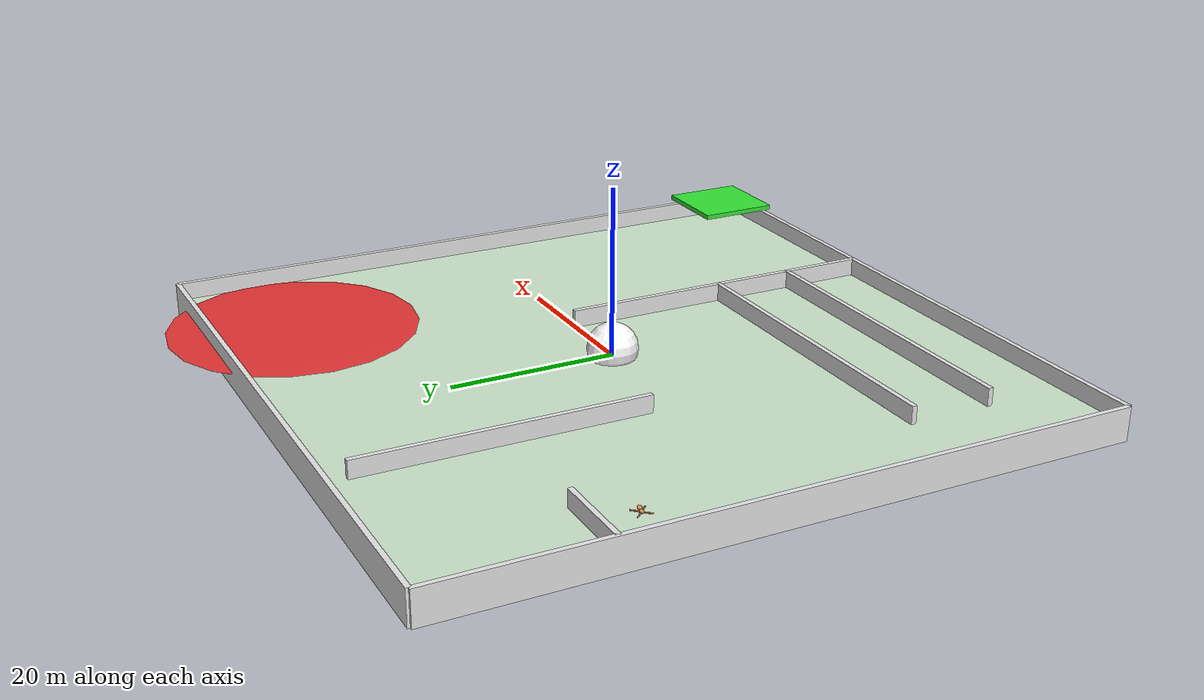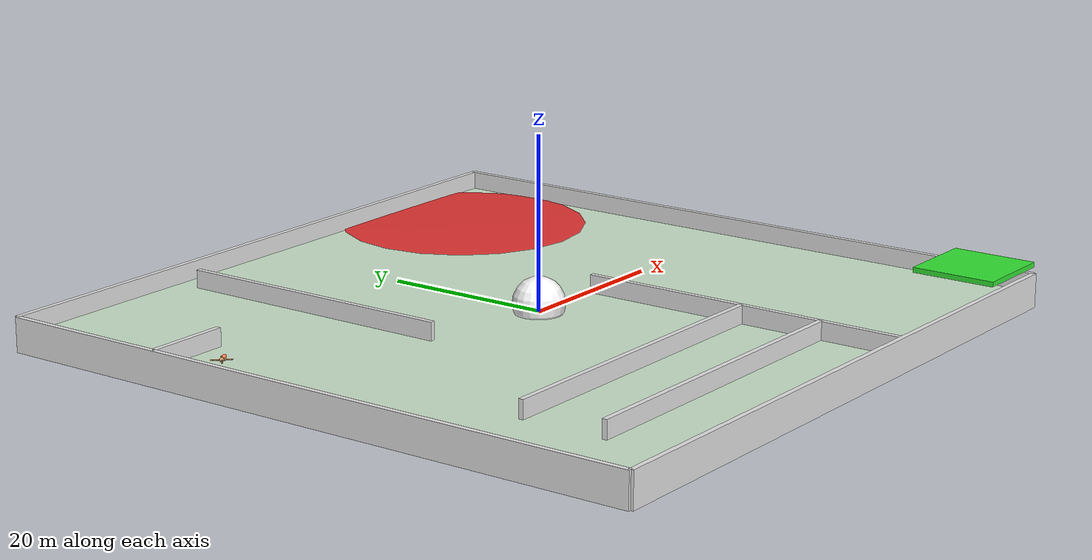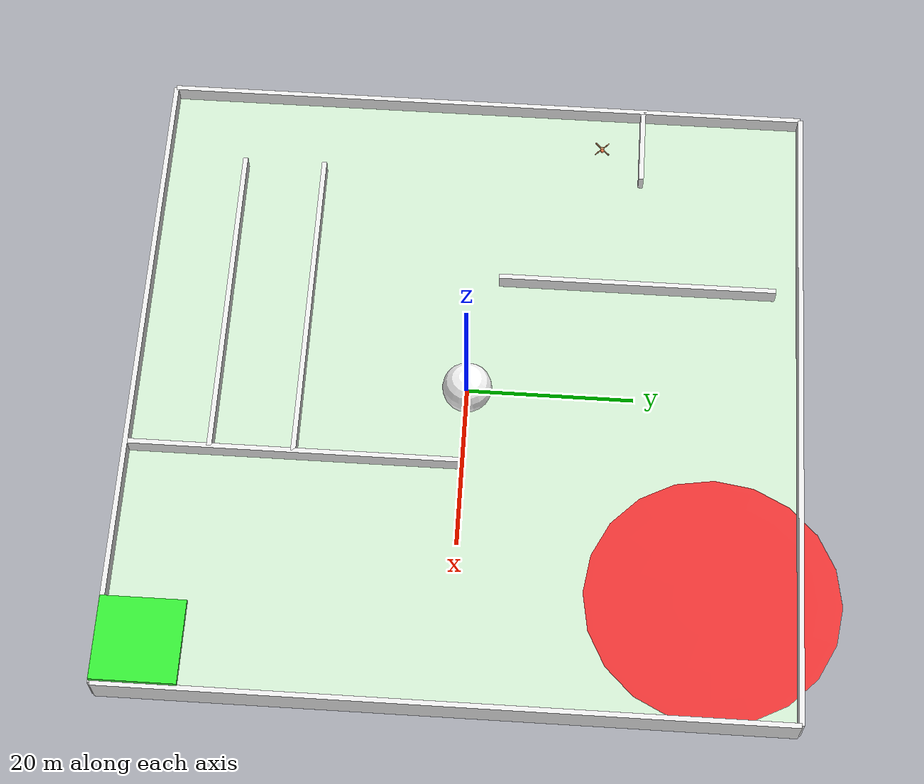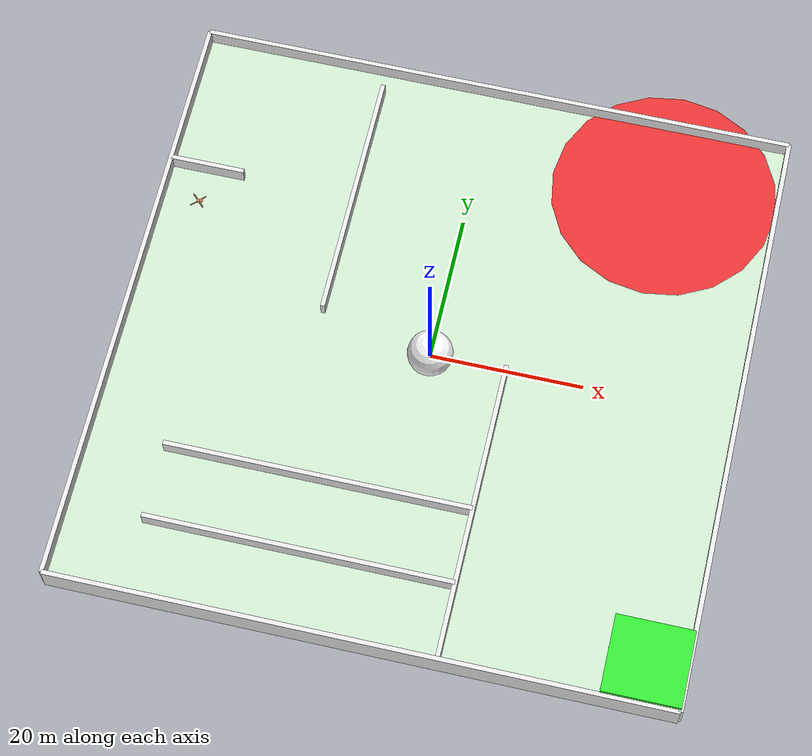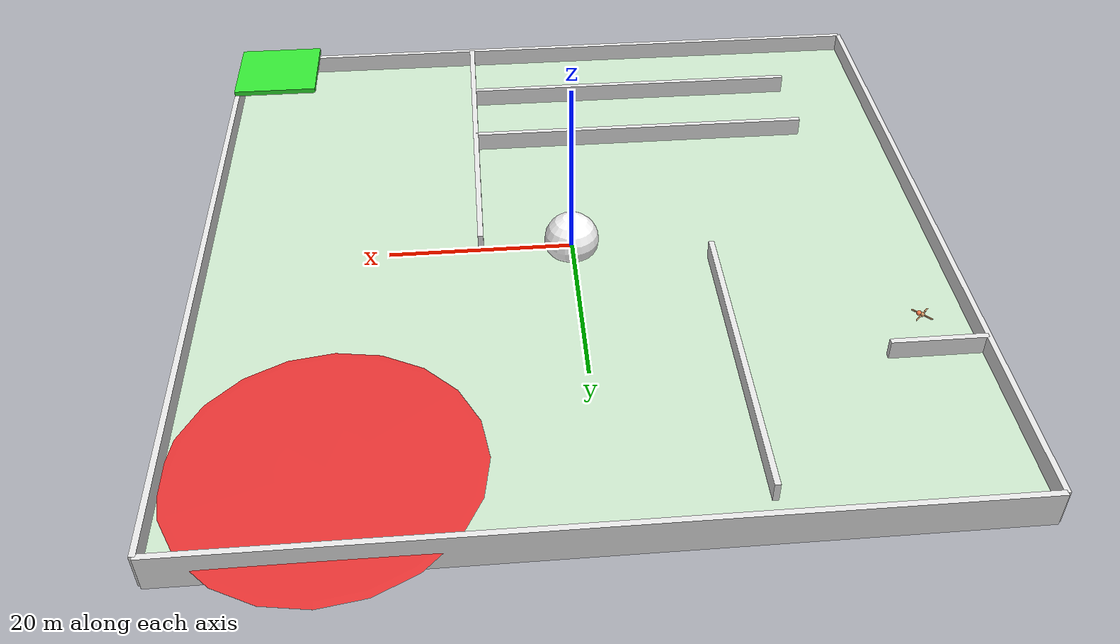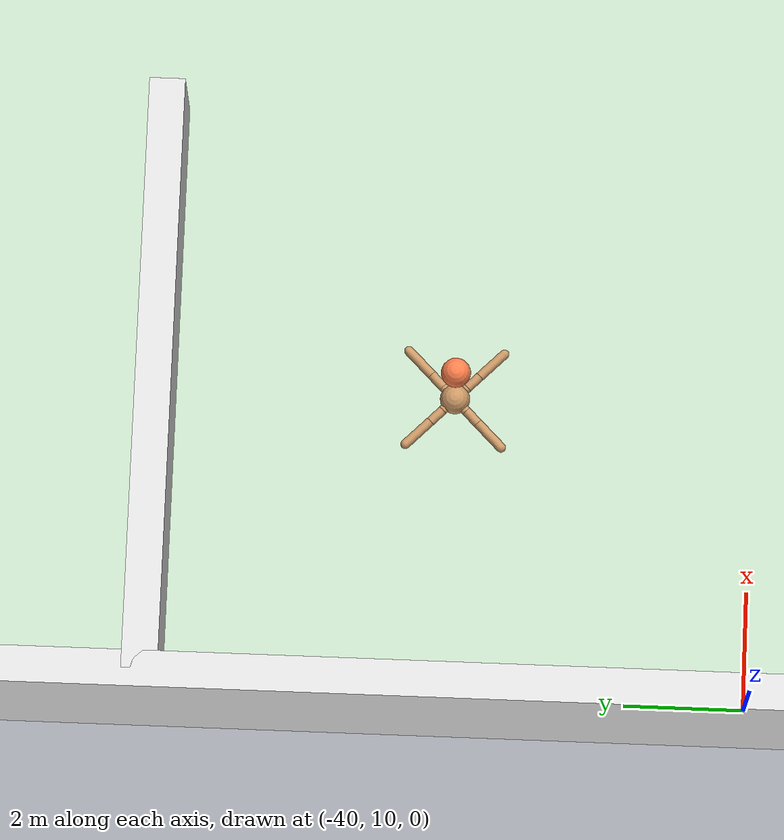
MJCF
<mujoco model="ant">
  <compiler angle="degree" coordinate="local" inertiafromgeom="true" settotalmass="25755"/>
  <option integrator="RK4" timestep="0.005"/>
  <custom>
    <numeric data="0.0 0.0 0.55 1.0 0.0 0.0 0.0 0.0 1.0 0.0 -1.0 0.0 -1.0 0.0 1.0" name="init_qpos"/>
  </custom>
  <default>
    <joint armature="1" damping="1" limited="true"/>
    <geom conaffinity="0" condim="3" density="5.0" friction="1 0.5 0.5" margin="0.01" rgba="0.8 0.6 0.4 1" material="geom"/>
  </default>
    <asset>
        <texture name="monstertex" type="cube" file="monstertex.png" gridsize="3 4" gridlayout=".U..LDRB.F.."/>
        <texture type="skybox" builtin="gradient" rgb1=".1 .12 .15" rgb2="0 0 0" width="100" height="100"/>
        <texture builtin="checker" height="100" name="texplane" rgb1=".1 .1 .1" rgb2=".15 .15 0.15" type="2d" width="100"/>
        <material name="MatPlane" reflectance="0.5" shininess="1" specular="1" texrepeat="50 50" texture="texplane"/>
        <texture builtin="flat" height="1278" mark="cross" markrgb="1 1 1" name="texgeom" random="0.01" rgb1="0.8 0.6 0.4" rgb2="0.8 0.6 0.4" type="cube" width="127"/>
        <material name="monstermat" texture="monstertex" texuniform="true"/>
        <material name="geom" texture="texgeom" texuniform="true"/>
    </asset>
  <worldbody>
    <light cutoff="100" diffuse="1 1 1" dir="-0 0 -1.3" directional="true" exponent="1" pos="0 0 1.3" specular=".1 .1 .1"/>
    <geom conaffinity="1" condim="3" material="MatPlane" name="floor" pos="0 0 0" rgba="0.8 0.9 0.8 1" size="40 40 40" type="plane"/>
    <body name="torso" pos="-35 15 0.6">
      <geom name="torso_geom" pos="0 0 0" size="0.25 0.25 0.25" type="ellipsoid"/>
      <geom name="head" density="0.01" rgba="1.0 0.5 0.3 1" pos="0.4 0 0.25" size="0.25" type="sphere"/>
      <joint armature="0" damping="0" limited="false" margin="0.01" name="root" pos="0 0 0" type="free"/>
      <body name="front_left_leg" pos="0 0 0">
        <geom fromto="0.0 0.0 0.0 0.2 0.2 0.0" name="aux_1_geom" size="0.08" type="capsule"/>
        <body name="aux_1" pos="0.2 0.2 0">
          <joint axis="0 0 1" name="hip_1" pos="0.0 0.0 0.0" range="-30 30" type="hinge"/>
          <geom fromto="0.0 0.0 0.0 0.2 0.2 0.0" name="left_leg_geom" size="0.08" type="capsule"/>
          <body pos="0.2 0.2 0">
            <joint axis="-1 1 0" name="ankle_1" pos="0.0 0.0 0.0" range="30 70" type="hinge"/>
            <geom fromto="0.0 0.0 0.0 0.4 0.4 0.0" name="left_ankle_geom" size="0.08" type="capsule"/>
          </body>
        </body>
      </body>
      <body name="front_right_leg" pos="0 0 0">
        <geom fromto="0.0 0.0 0.0 -0.2 0.2 0.0" name="aux_2_geom" size="0.08" type="capsule"/>
        <body name="aux_2" pos="-0.2 0.2 0">
          <joint axis="0 0 1" name="hip_2" pos="0.0 0.0 0.0" range="-30 30" type="hinge"/>
          <geom fromto="0.0 0.0 0.0 -0.2 0.2 0.0" name="right_leg_geom" size="0.08" type="capsule"/>
          <body pos="-0.2 0.2 0">
            <joint axis="1 1 0" name="ankle_2" pos="0.0 0.0 0.0" range="-70 -30" type="hinge"/>
            <geom fromto="0.0 0.0 0.0 -0.4 0.4 0.0" name="right_ankle_geom" size="0.08" type="capsule"/>
          </body>
        </body>
      </body>
      <body name="back_leg" pos="0 0 0">
        <geom fromto="0.0 0.0 0.0 -0.2 -0.2 0.0" name="aux_3_geom" size="0.08" type="capsule"/>
        <body name="aux_3" pos="-0.2 -0.2 0">
          <joint axis="0 0 1" name="hip_3" pos="0.0 0.0 0.0" range="-30 30" type="hinge"/>
          <geom fromto="0.0 0.0 0.0 -0.2 -0.2 0.0" name="back_leg_geom" size="0.08" type="capsule"/>
          <body pos="-0.2 -0.2 0">
            <joint axis="-1 1 0" name="ankle_3" pos="0.0 0.0 0.0" range="-70 -30" type="hinge"/>
            <geom fromto="0.0 0.0 0.0 -0.4 -0.4 0.0" name="third_ankle_geom" size="0.08" type="capsule"/>
          </body>
        </body>
      </body>
      <body name="right_back_leg" pos="0 0 0">
        <geom fromto="0.0 0.0 0.0 0.2 -0.2 0.0" name="aux_4_geom" size="0.08" type="capsule"/>
        <body name="aux_4" pos="0.2 -0.2 0">
          <joint axis="0 0 1" name="hip_4" pos="0.0 0.0 0.0" range="-30 30" type="hinge"/>
          <geom fromto="0.0 0.0 0.0 0.2 -0.2 0.0" name="rightback_leg_geom" size="0.08" type="capsule"/>
          <body pos="0.2 -0.2 0">
            <joint axis="1 1 0" name="ankle_4" pos="0.0 0.0 0.0" range="30 70" type="hinge"/>
            <geom fromto="0.0 0.0 0.0 0.4 -0.4 0.0" name="fourth_ankle_geom" size="0.08" type="capsule"/>
          </body>
        </body>
      </body>
    </body>

    <!-- the big border -->
    <geom pos="0 40 0" conaffinity="1" rgba="0.9 0.9 0.9 1" size="40 0.3 2" type="box"/>
    <geom pos="0 -40 0" conaffinity="1" rgba="0.9 0.9 0.9 1" size="40 0.3 2" type="box"/>
    <geom pos="40 0 0" conaffinity="1" rgba="0.9 0.9 0.9 1" size="0.3 40 2" type="box"/>
    <geom pos="-40 0 0" conaffinity="1" rgba="0.9 0.9 0.9 1" size="0.3 40 2" type="box"/>

    <!-- the top-left box -->
    <geom pos="-15 20 0" conaffinity="1" rgba="0.9 0.9 0.9 1" size="0.3 17 2" type="box"/>
    <geom pos="-35 20 0" conaffinity="1" rgba="0.9 0.9 0.9 1" size="5 0.3 2" type="box"/>

    <geom pos="-10 -20 0" conaffinity="1" rgba="0.9 0.9 0.9 1" size="20 0.3 2" type="box"/>
    <geom pos="-10 -30 0" conaffinity="1" rgba="0.9 0.9 0.9 1" size="20 0.3 2" type="box"/>
    <geom pos="10 -20 0" conaffinity="1" rgba="0.9 0.9 0.9 1" size="0.3 20 2" type="box"/>

    <!-- the monster -->
    <geom pos="25 30 0" conaffinity="0" contype="0" rgba="0.9 0.2 0.2 1" size="15 15 0.1" type="ellipsoid"/>
    <body name="monster" pos="0 0 0">
      <geom pos="0 0 1" material="monstermat" conaffinity="1" rgba="1 1 1 1" size="3 3 3" type="ellipsoid"/>
      <joint armature="0" axis="1 0 0" damping="0" limited="false" name="horiz" pos="0 0 0" stiffness="0" type="slide"/>
      <joint armature="0" axis="0 1 0" damping="0" limited="false" name="vert" pos="0 0 0" stiffness="0" type="slide"/>
    </body>

    <geom pos="35 -35 3" conaffinity="1" rgba="0.2 0.9 0.2 1" size="5 5 0.3" type="box"/>

  </worldbody>
  <actuator>
    <motor ctrllimited="true" ctrlrange="-1.0 1.0" joint="hip_4" gear="150"/>
    <motor ctrllimited="true" ctrlrange="-1.0 1.0" joint="ankle_4" gear="150"/>
    <motor ctrllimited="true" ctrlrange="-1.0 1.0" joint="hip_1" gear="150"/>
    <motor ctrllimited="true" ctrlrange="-1.0 1.0" joint="ankle_1" gear="150"/>
    <motor ctrllimited="true" ctrlrange="-1.0 1.0" joint="hip_2" gear="150"/>
    <motor ctrllimited="true" ctrlrange="-1.0 1.0" joint="ankle_2" gear="150"/>
    <motor ctrllimited="true" ctrlrange="-1.0 1.0" joint="hip_3" gear="150"/>
    <motor ctrllimited="true" ctrlrange="-1.0 1.0" joint="ankle_3" gear="150"/>
  </actuator>
  <sensor>
    <jointpos name='pos_hip_1' joint='hip_1' />
    <jointpos name='pos_hip_2' joint='hip_2' />
    <jointpos name='pos_hip_3' joint='hip_3' />
    <jointpos name='pos_hip_4' joint='hip_4' />
    <jointpos name='pos_ankle_1' joint='ankle_1' />
    <jointpos name='pos_ankle_2' joint='ankle_2' />
    <jointpos name='pos_ankle_3' joint='ankle_3' />
    <jointpos name='pos_ankle_4' joint='ankle_4' />

    <jointvel name='vel_hip_1'   joint='hip_1' />
    <jointvel name='vel_hip_2'   joint='hip_2' />
    <jointvel name='vel_hip_3'   joint='hip_3' />
    <jointvel name='vel_hip_4'   joint='hip_4' />
    <jointvel name='vel_ankle_1' joint='ankle_1' />
    <jointvel name='vel_ankle_2' joint='ankle_2' />
    <jointvel name='vel_ankle_3' joint='ankle_3' />
    <jointvel name='vel_ankle_4' joint='ankle_4' />
  </sensor>
</mujoco>
